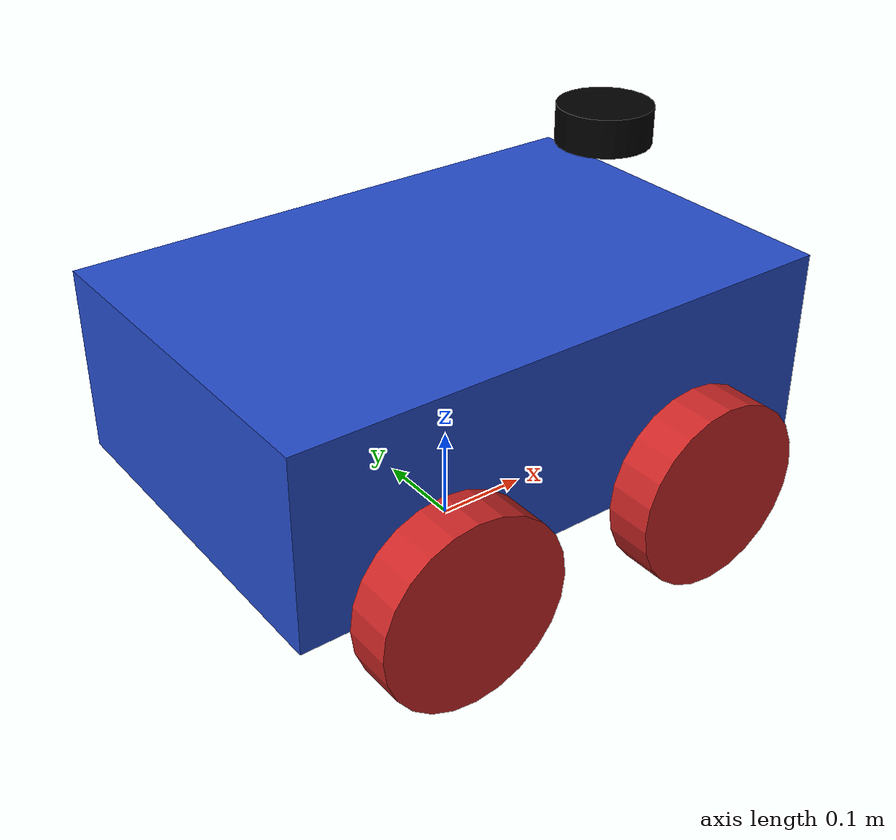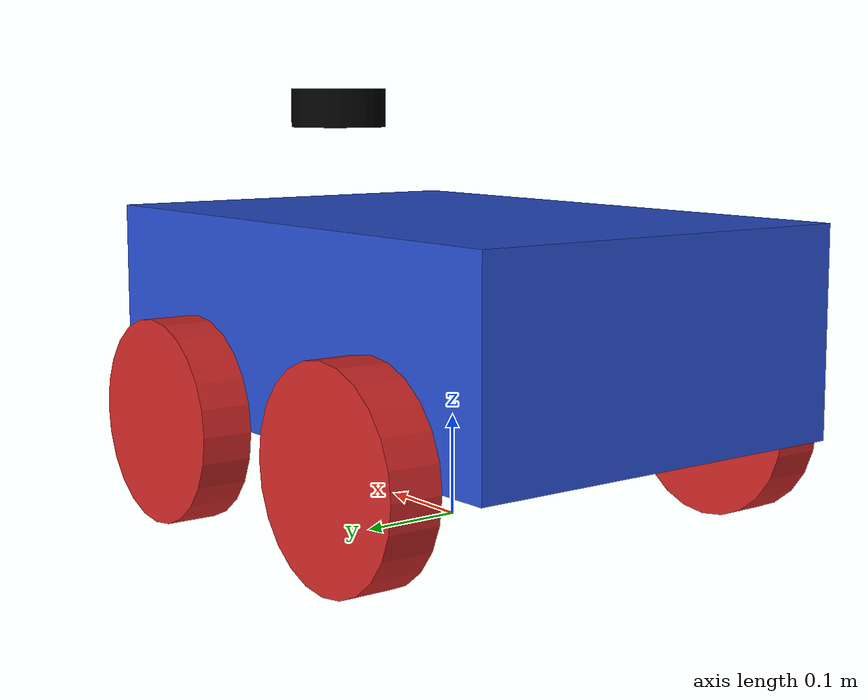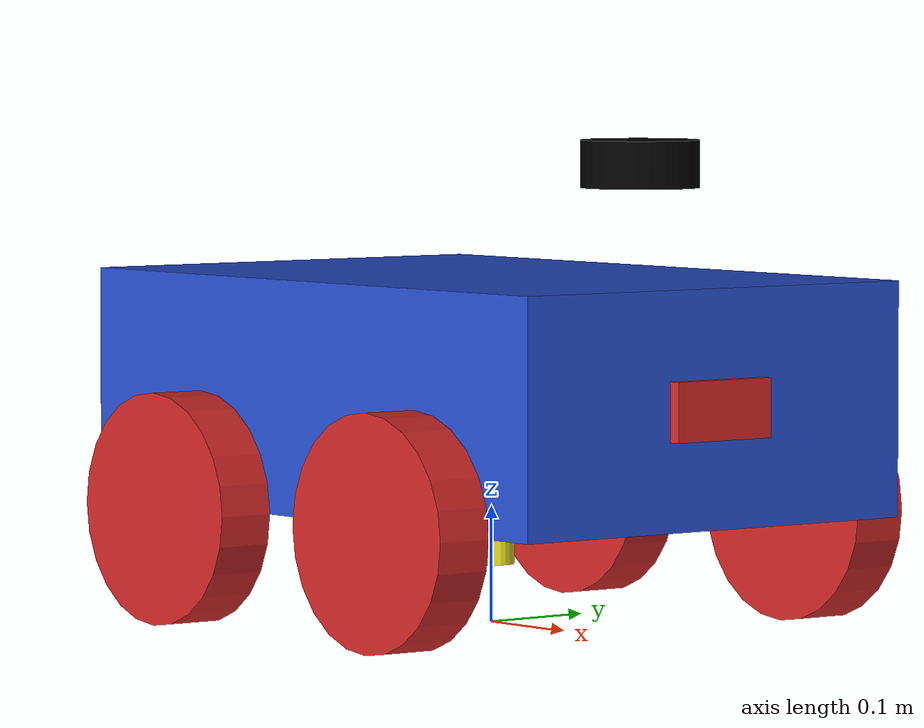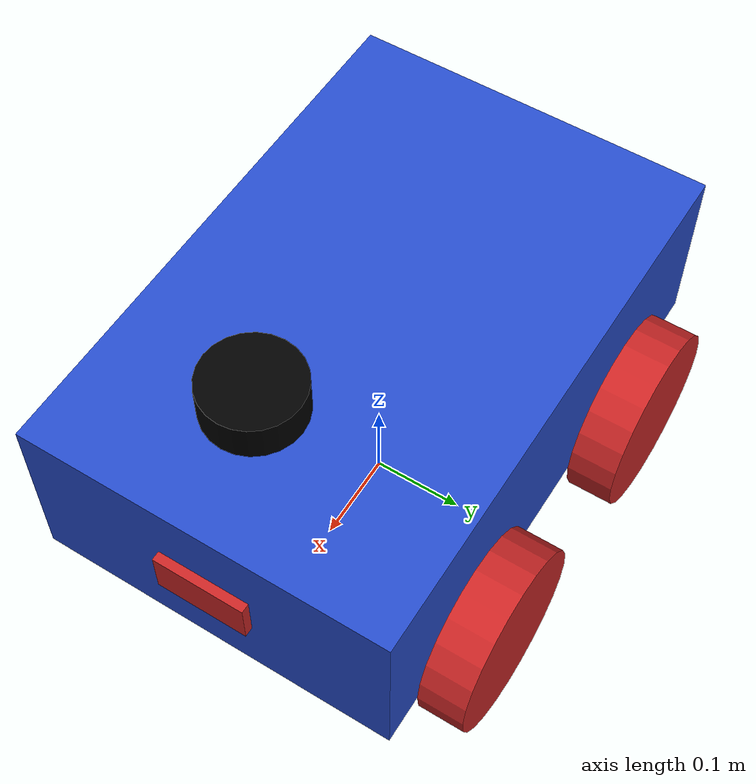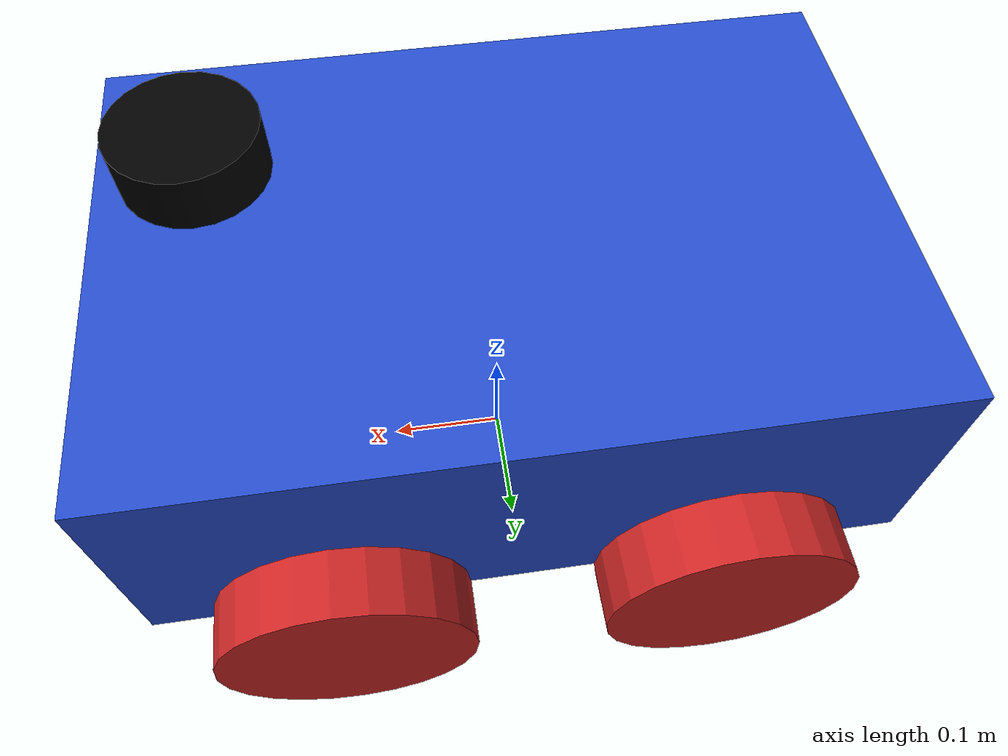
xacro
<?xml version="1.0"?>
<robot name="my_robot" xmlns:xacro="http://www.ros.org/wiki/xacro">

    <xacro:include filename="common_properties.xacro" />
    <xacro:include filename="mobile_base.xacro" />
    <xacro:include filename="mobile_base_gazebo.xacro" />
    <xacro:include filename="camera.xacro" />
    <xacro:include filename="lidar.xacro"/>
    <xacro:include filename="imu.xacro"/>
    <xacro:include filename="gps.xacro"/>

</robot>

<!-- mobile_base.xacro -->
<robot xmlns:xacro="http://www.ros.org/wiki/xacro">

    <xacro:property name="base_length" value="0.6" />
    <xacro:property name="base_width" value="0.4" />
    <xacro:property name="base_height" value="0.2" />
    <xacro:property name="wheel_radius" value="0.1" />
    <xacro:property name="wheel_length" value="0.05" />

    <link name="imu_frame"/>

    <joint name="imu_joint" type="fixed">
        <parent link="base_link"/>
        <child link="imu_frame"/>
        <origin xyz="0.0 0.0 0.08" rpy="0.0 0.0 0.0"/>
    </joint>

    <link name="base_link">
        <visual>
            <geometry>
                <box size="${base_length} ${base_width} ${base_height}" />
            </geometry>
            <origin xyz="0 0 ${base_height / 2.0}" rpy="0 0 0" />
            <material name="blue" />
        </visual>
        <collision>
            <geometry>
                <box size="${base_length} ${base_width} ${base_height}" />
            </geometry>
            <origin xyz="0 0 ${base_height / 2.0}" rpy="0 0 0" />
        </collision>
        <xacro:box_inertia m="100.0" l="${2*base_length}" w="${2*base_width}" h="${2*base_height}"
                           xyz="0 0 ${base_height / 2.0}" rpy="0 0 0" />
    </link>

    <xacro:macro name="wheel_link" params="prefix">
        <link name="${prefix}_wheel_link">
            <visual>
                <geometry>
                    <cylinder radius="${wheel_radius}" length="${wheel_length}" />
                </geometry>
                <origin xyz="0 0 0" rpy="${pi / 2.0} 0 0" />
                <material name="red" />
            </visual>
            <collision>
                <geometry>
                    <cylinder radius="${wheel_radius}" length="${wheel_length}" />
                </geometry>
                <origin xyz="0 0 0" rpy="${pi / 2.0} 0 0" />
            </collision>
            <xacro:cylinder_inertia m="10.0" r="${2*wheel_radius}" h="${2*wheel_length}"
                                    xyz="0 0 0" rpy="${pi / 2.0} 0 0" />
        </link>
    </xacro:macro>

    <xacro:wheel_link prefix="right_back" />
    <xacro:wheel_link prefix="left_back" />
    <xacro:wheel_link prefix="right_front" />
    <xacro:wheel_link prefix="left_front" />

    <link name="base_footprint">
    </link>

    <joint name="base_right_back_wheel_joint" type="continuous">
        <parent link="base_link" />
        <child link="right_back_wheel_link" />
        <origin xyz="${-base_length / 4.0} ${-(base_width + wheel_length) / 2.0} 0" rpy="0 0 0" />
        <axis xyz="0 1 0" />
    </joint>

    <joint name="base_right_front_wheel_joint" type="continuous">
        <parent link="base_link" />
        <child link="right_front_wheel_link" />
        <origin xyz="${(base_length) / 4.0} ${-(base_width + wheel_length) / 2.0} 0" rpy="0 0 0" />
        <axis xyz="0 1 0" />
    </joint>

     <joint name="base_left_back_wheel_joint" type="continuous">
        <parent link="base_link" />
        <child link="left_back_wheel_link" />
        <origin xyz="${-base_length / 4.0} ${(base_width + wheel_length) / 2.0} 0" rpy="0 0 0" />
        <axis xyz="0 1 0" />
    </joint>

    <joint name="base_left_front_wheel_joint" type="continuous">
        <parent link="base_link" />
        <child link="left_front_wheel_link" />
        <origin xyz="${base_length / 4.0} ${(base_width + wheel_length) / 2.0} 0" rpy="0 0 0" />
        <axis xyz="0 1 0" />
    </joint>

    <joint name="base_footprint_joint" type="fixed">
        <parent link="base_footprint" />
        <child link="base_link" />
        <origin xyz="0 0 ${wheel_radius}" rpy="0 0 0" />
    </joint>

</robot>

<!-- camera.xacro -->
<robot xmlns:xacro="http://www.ros.org/wiki/xacro">

    <xacro:property name="camera_length" value="0.01" />
    <xacro:property name="camera_width" value="0.1" />
    <xacro:property name="camera_height" value="0.05" />

    <link name="camera_link">
        <visual>
            <geometry>
                <box size="${camera_length} ${camera_width} ${camera_height}" />
            </geometry>
            <material name="red" />
        </visual>
        <collision>
            <geometry>
                <box size="${camera_length} ${camera_width} ${camera_height}" />
            </geometry>
        </collision>
        <xacro:box_inertia m="0.1" l="${camera_length}" w="${camera_width}" h="${camera_height}"
                           xyz="0 0 0" rpy="0 0 0" />
    </link>

    <joint name="base_camera_joint" type="fixed">
        <parent link="base_link" />
        <child link="camera_link" />
        <origin xyz="${(base_length + camera_length) / 2.0} 0 ${base_height / 2.0}" rpy="0 0 0" />
    </joint>

    <gazebo reference="camera_link">
        <material>Gazebo/Red</material>
        <sensor name="camera_sensor" type="camera">
            <pose>0 0 0 0 0 0</pose>
            <visualize>true</visualize>
            <update_rate>10.0</update_rate>
            <plugin name="camera_controller" filename="libgazebo_ros_camera.so">
                <frame_name>camera_link</frame_name>
            </plugin>
        </sensor>
    </gazebo>

</robot>

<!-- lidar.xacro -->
<robot xmlns:xacro="http://www.ros.org/wiki/xacro">

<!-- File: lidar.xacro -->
<xacro:property name="lidar_height" value="0.15"/> <!-- 15 cm above base -->
<material name="black">
    <color rgba="0.0 0.0 0.0 1.0"/>
</material>

<joint name="laser_joint" type="fixed">
    <parent link="base_link"/>
    <child link="laser_frame"/>
    <origin xyz="0.2 0 ${lidar_height * 2}" rpy="0 0 0"/>
</joint>

<link name="laser_frame">
    <visual>
        <geometry>
            <cylinder radius="0.05" length="0.04"/>
        </geometry>
        <material name="black"/>
    </visual>
    <collision>
        <geometry>
            <cylinder radius="0.05" length="0.04"/>
        </geometry>
    </collision>
    <inertial>
        <mass value="0.1"/>
        <origin xyz="0 0 0" rpy="0 0 0"/>
        <inertia ixx="0.001" iyy="0.001" izz="0.001" ixy="0" ixz="0" iyz="0"/>
    </inertial>
</link>

<gazebo reference="laser_frame">
    <sensor name="lidar_sensor" type="ray">
        <pose>0 0 0 0 0 0</pose>
        <visualize>true</visualize>
        <update_rate>10.0</update_rate>
        <ray>
            <scan>
                <horizontal>
                    <samples>360</samples>
                    <resolution>1</resolution>
                    <min_angle>-3.14159</min_angle>
                    <max_angle>3.14159</max_angle>
                </horizontal>
            </scan>
            <range>
                <min>0.1</min>
                <max>12.0</max>
                <resolution>0.01</resolution>
            </range>
        </ray>
        <plugin name="lidar_plugin" filename="libgazebo_ros_ray_sensor.so">
            <ros>
                <remapping>~/out:=scan</remapping>
            </ros>
            <output_type>sensor_msgs/LaserScan</output_type>
            <frame_name>laser_frame</frame_name>
        </plugin>
    </sensor>
</gazebo>

</robot>

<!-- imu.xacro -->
<robot xmlns:xacro="http://www.ros.org/wiki/xacro">

<xacro:property name="imu_offset_x" value="0.0"/>
<xacro:property name="imu_offset_y" value="0.0"/>
<xacro:property name="imu_offset_z" value="0.1"/> <!-- e.g., 10 cm above base -->

<link name="imu_link">
  <visual>
    <geometry>
      <box size="0.03 0.03 0.01"/>
    </geometry>
    <material name="blue"/>
  </visual>
  <collision>
    <geometry>
      <box size="0.03 0.03 0.01"/>
    </geometry>
  </collision>
  <inertial>
    <mass value="0.01"/>
    <origin xyz="0 0 0" rpy="0 0 0"/>
    <inertia ixx="1e-6" iyy="1e-6" izz="1e-6" ixy="0" ixz="0" iyz="0"/>
  </inertial>
</link>

<joint name="imu_joint" type="fixed">
    <parent link="base_link"/>
    <child link="imu_link"/>
    <origin xyz="${imu_offset_x} ${imu_offset_y} ${imu_offset_z}" rpy="0 0 0"/>
</joint>

<gazebo reference="imu_link">
  <sensor name="imu_sensor" type="imu">
    <always_on>true</always_on>
    <update_rate>50</update_rate> <!-- e.g., 50 Hz -->
    <visualize>true</visualize>
    <pose>0 0 0 0 0 0</pose>
    <plugin name="gazebo_ros_imu" filename="libgazebo_ros_imu_sensor.so">
      <ros>
        <!-- The plugin's default output topic is ~/out; we remap to /imu/data -->
        <remapping>~/out:=imu/data</remapping>
      </ros>
      <frame_name>imu_link</frame_name>
      <enable_orientation>true</enable_orientation>
      <enable_angular_velocity>true</enable_angular_velocity>
      <enable_linear_acceleration>true</enable_linear_acceleration>
    </plugin>
  </sensor>
</gazebo>

</robot>

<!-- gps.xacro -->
<robot xmlns:xacro="http://www.ros.org/wiki/xacro">

<xacro:property name="gps_offset_x" value="0.0"/>
<xacro:property name="gps_offset_y" value="0.0"/>
<xacro:property name="gps_offset_z" value="0.0"/> <!-- e.g., 30 cm above base -->

<joint name="gps_joint" type="fixed">
  <parent link="base_link"/>
  <child link="gps_link"/>
  <origin xyz="${gps_offset_x} ${gps_offset_y} ${gps_offset_z}" rpy="0 0 0"/>
</joint>

<link name="gps_link">
  <visual>
    <geometry>
      <cylinder radius="0.02" length="0.1"/>
    </geometry>
    <material name="yellow"/>
  </visual>
  <collision>
    <geometry>
      <cylinder radius="0.02" length="0.1"/>
    </geometry>
  </collision>
  <inertial>
    <mass value="0.05"/>
    <origin xyz="0 0 0" rpy="0 0 0"/>
    <inertia ixx="1e-5" iyy="1e-5" izz="1e-5" ixy="0" ixz="0" iyz="0"/>
  </inertial>
</link>

<gazebo reference="gps_link">
  <sensor name="gps_sensor" type="gps">
    <always_on>true</always_on>
    <update_rate>1</update_rate> <!-- 1 Hz update rate -->
    <visualize>false</visualize>
    <plugin name="gazebo_ros_gps" filename="libgazebo_ros_gps_sensor.so">
      <ros>
        <!-- The plugin’s default output is ~/out; we remap it to /gps/fix -->
        <remapping>~/out:=gps/fix</remapping>
      </ros>
      <frame_name>gps_link</frame_name>
    </plugin>
  </sensor>
</gazebo>

</robot>
